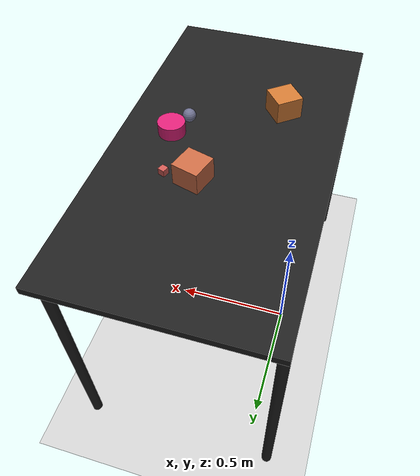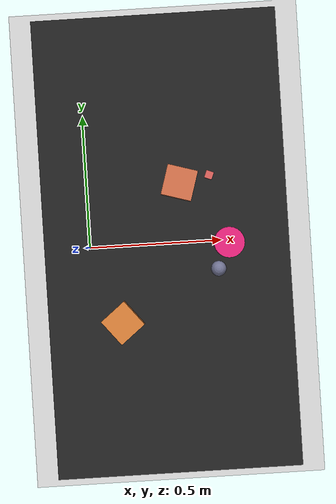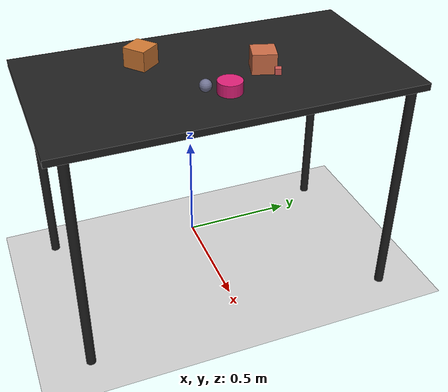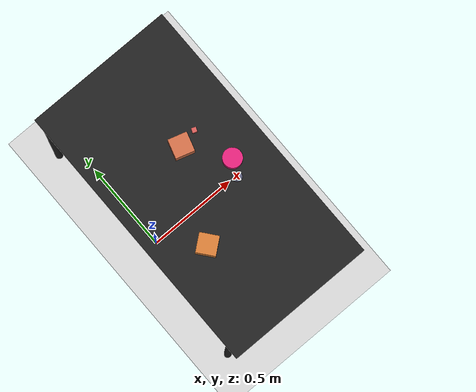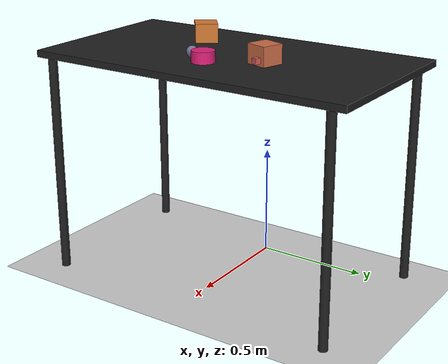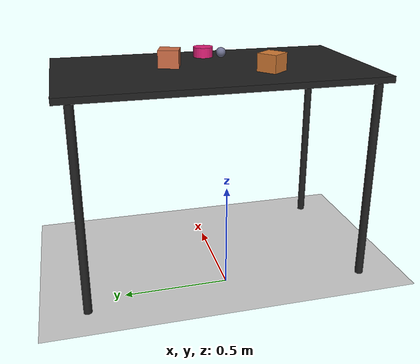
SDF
<?xml version="1.0" ?>
<sdf version="1.6">
  <world name="arm_world">
    <plugin filename="gz-sim-physics-system" name="gz::sim::systems::Physics">
      <engine>
        <filename>libgz-physics-bullet-featherstone-plugin.so</filename>
      </engine>
    </plugin>
    <plugin filename="gz-sim-user-commands-system" name="gz::sim::systems::UserCommands"/>
    <plugin filename="gz-sim-scene-broadcaster-system" name="gz::sim::systems::SceneBroadcaster"/>
    <plugin filename="gz-sim-sensors-system" name="gz::sim::systems::Sensors">
      <render_engine>ogre2</render_engine>
    </plugin>
    <gravity>0.0 0.0 -9.8</gravity>
    <scene>
      <shadows>false</shadows>
    </scene>
    <gui>
      <camera name="user_camera">
        <pose>0.75 -0.75 1.4 0 0.29 2.21</pose>
      </camera>
    </gui>
    <include>
      <uri>https://fuel.gazebosim.org/1.0/OpenRobotics/models/Sun</uri>
    </include>
    <model name="table">
      <static>true</static>
      <include>
        <uri>model://table</uri>
      </include>
      <pose>0.29 0 0 0 0 1.5708</pose>
    </model>
    <model name="ground_plane">
      <static>true</static>
      <link name="link">
        <collision name="collision">
          <geometry>
            <plane>
              <normal>0 0 1</normal>
            </plane>
          </geometry>
          <surface>
            <friction>
              <ode>
                <mu>1.0</mu>
                <mu2>1.0</mu2>
              </ode>
            </friction>
          </surface>
        </collision>
        <visual name="visual">
          <geometry>
            <plane>
              <normal>0 0 1</normal>
              <size>100 100</size>
            </plane>
          </geometry>
          <material>
            <ambient>0.8 0.8 0.8 1</ambient>
            <diffuse>0.8 0.8 0.8 1</diffuse>
            <specular>0.8 0.8 0.8 1</specular>
          </material>
        </visual>
      </link>
    </model>
    <model name="sphere_m_0">
      <pose>0.454 -0.092 1.05 0 0 6.2</pose>
      <link name="sphere_m_0_link">
        <collision name="sphere_m_0_collision">
          <geometry>
            <sphere>
              <radius>0.025</radius>
            </sphere>
          </geometry>
        </collision>
        <visual name="sphere_m_0_visual">
          <geometry>
            <sphere>
              <radius>0.025</radius>
            </sphere>
          </geometry>
          <material>
            <ambient>0.43 0.44 0.56 1</ambient>
            <diffuse>0.43 0.44 0.56 1</diffuse>
          </material>
        </visual>
        <velocity_decay>
          <linear>1</linear>
          <angular>1</angular>
        </velocity_decay>
      </link>
    </model>
    <model name="cylinder_l_1">
      <pose>0.493 -0.009 1.05 0 0 2.52</pose>
      <link name="cylinder_l_1_link">
        <collision name="cylinder_l_1_collision">
          <geometry>
            <cylinder>
              <radius>0.05</radius>
              <length>0.05</length>
            </cylinder>
          </geometry>
        </collision>
        <visual name="cylinder_l_1_visual">
          <geometry>
            <cylinder>
              <radius>0.05</radius>
              <length>0.05</length>
            </cylinder>
          </geometry>
          <material>
            <ambient>0.86 0.12 0.46 1</ambient>
            <diffuse>0.86 0.12 0.46 1</diffuse>
          </material>
        </visual>
        <velocity_decay>
          <linear>1</linear>
          <angular>1</angular>
        </velocity_decay>
      </link>
    </model>
    <model name="cube_s_2">
      <pose>0.441 0.213 1.05 0 0 5.91</pose>
      <link name="cube_s_2_link">
        <collision name="cube_s_2_collision">
          <geometry>
            <box>
              <size>0.025 0.025 0.025</size>
            </box>
          </geometry>
        </collision>
        <visual name="cube_s_2_visual">
          <geometry>
            <box>
              <size>0.025 0.025 0.025</size>
            </box>
          </geometry>
          <material>
            <ambient>0.81 0.35 0.33 1</ambient>
            <diffuse>0.81 0.35 0.33 1</diffuse>
          </material>
        </visual>
        <velocity_decay>
          <linear>1</linear>
          <angular>1</angular>
        </velocity_decay>
      </link>
    </model>
    <model name="cube_l_3">
      <pose>0.343 0.193 1.05 0 0 1.28</pose>
      <link name="cube_l_3_link">
        <collision name="cube_l_3_collision">
          <geometry>
            <box>
              <size>0.1 0.1 0.1</size>
            </box>
          </geometry>
        </collision>
        <visual name="cube_l_3_visual">
          <geometry>
            <box>
              <size>0.1 0.1 0.1</size>
            </box>
          </geometry>
          <material>
            <ambient>0.79 0.42 0.27 1</ambient>
            <diffuse>0.79 0.42 0.27 1</diffuse>
          </material>
        </visual>
        <velocity_decay>
          <linear>1</linear>
          <angular>1</angular>
        </velocity_decay>
      </link>
    </model>
    <model name="cube_l_4">
      <pose>0.133 -0.249 1.05 0 0 5.39</pose>
      <link name="cube_l_4_link">
        <collision name="cube_l_4_collision">
          <geometry>
            <box>
              <size>0.1 0.1 0.1</size>
            </box>
          </geometry>
        </collision>
        <visual name="cube_l_4_visual">
          <geometry>
            <box>
              <size>0.1 0.1 0.1</size>
            </box>
          </geometry>
          <material>
            <ambient>0.81 0.47 0.2 1</ambient>
            <diffuse>0.81 0.47 0.2 1</diffuse>
          </material>
        </visual>
        <velocity_decay>
          <linear>1</linear>
          <angular>1</angular>
        </velocity_decay>
      </link>
    </model>
  </world>
</sdf>

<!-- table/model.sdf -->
<sdf version="1.5">
  <model name="table">
    <static>true</static>
    <link name="link">
      <collision name="surface">
        <pose>0 0 1.0 0 0 0</pose>
        <geometry>
          <box>
            <size>1.5 0.8 0.03</size>
          </box>
        </geometry>
        <surface>
          <friction>
            <ode>
              <mu>0.6</mu>
              <mu2>0.6</mu2>
            </ode>
          </friction>
        </surface>
      </collision>
      <visual name="surface">
        <pose>0 0 1.0 0 0 0</pose>
        <geometry>
          <box>
            <size>1.5 0.8 0.03</size>
          </box>
        </geometry>
        <material>
          <script>
            <uri>file://media/materials/scripts/gazebo.material</uri>
            <name>Gazebo/Black</name>
          </script>
        </material>
      </visual>
      <collision name="front_left_leg">
        <pose>0.68 0.38 0.5 0 0 0</pose>
        <geometry>
          <cylinder>
            <radius>0.02</radius>
            <length>1.0</length>
          </cylinder>
        </geometry>
      </collision>
      <visual name="front_left_leg">
        <pose>0.68 0.38 0.5 0 0 0</pose>
        <geometry>
          <cylinder>
            <radius>0.02</radius>
            <length>1.0</length>
          </cylinder>
        </geometry>
        <material>
          <script>
            <uri>file://media/materials/scripts/gazebo.material</uri>
            <name>Gazebo/Black</name>
          </script>
        </material>
      </visual>
      <collision name="front_right_leg">
        <pose>0.68 -0.38 0.5 0 0 0</pose>
        <geometry>
          <cylinder>
            <radius>0.02</radius>
            <length>1.0</length>
          </cylinder>
        </geometry>
      </collision>
      <visual name="front_right_leg">
        <pose>0.68 -0.38 0.5 0 0 0</pose>
        <geometry>
          <cylinder>
            <radius>0.02</radius>
            <length>1.0</length>
          </cylinder>
        </geometry>
        <material>
          <script>
            <uri>file://media/materials/scripts/gazebo.material</uri>
            <name>Gazebo/Black</name>
          </script>
        </material>
      </visual>
      <collision name="back_right_leg">
        <pose>-0.68 -0.38 0.5 0 0 0</pose>
        <geometry>
          <cylinder>
            <radius>0.02</radius>
            <length>1.0</length>
          </cylinder>
        </geometry>
      </collision>
      <visual name="back_right_leg">
        <pose>-0.68 -0.38 0.5 0 0 0</pose>
        <geometry>
          <cylinder>
            <radius>0.02</radius>
            <length>1.0</length>
          </cylinder>
        </geometry>
        <material>
          <script>
            <uri>file://media/materials/scripts/gazebo.material</uri>
            <name>Gazebo/Black</name>
          </script>
        </material>
      </visual>
      <collision name="back_left_leg">
        <pose>-0.68 0.38 0.5 0 0 0</pose>
        <geometry>
          <cylinder>
            <radius>0.02</radius>
            <length>1.0</length>
          </cylinder>
        </geometry>
      </collision>
      <visual name="back_left_leg">
        <pose>-0.68 0.38 0.5 0 0 0</pose>
        <geometry>
          <cylinder>
            <radius>0.02</radius>
            <length>1.0</length>
          </cylinder>
        </geometry>
        <material>
          <script>
            <uri>file://media/materials/scripts/gazebo.material</uri>
            <name>Gazebo/Black</name>
          </script>
        </material>
      </visual>
    </link>
  </model>
</sdf>
